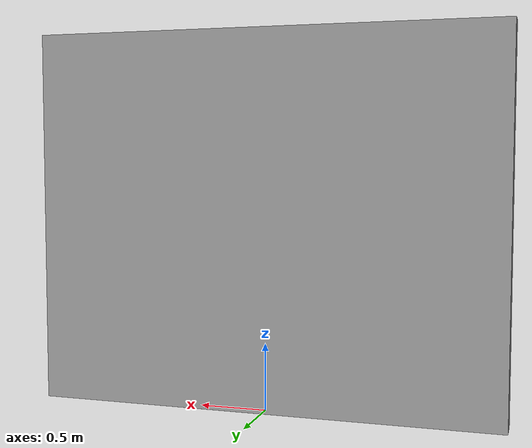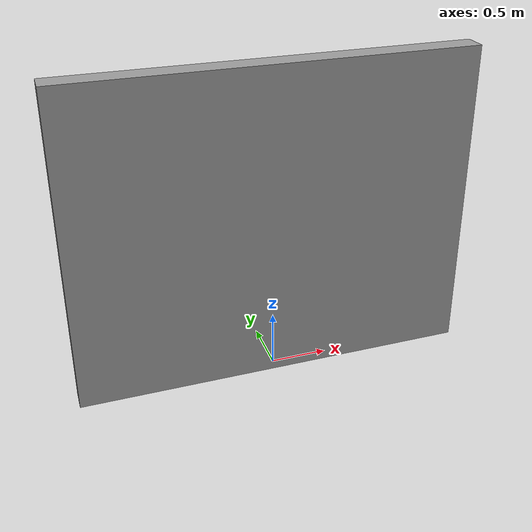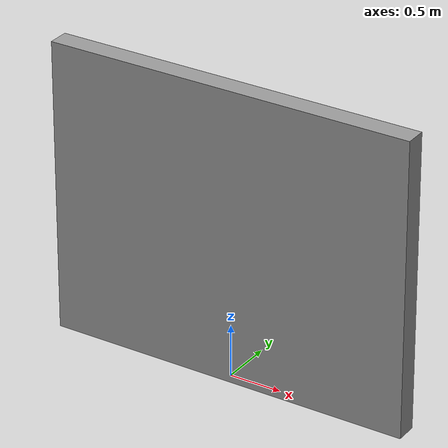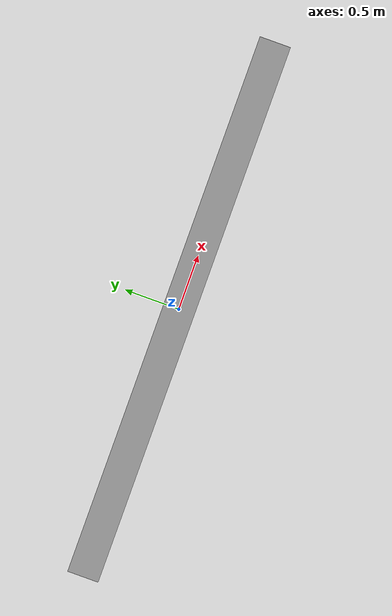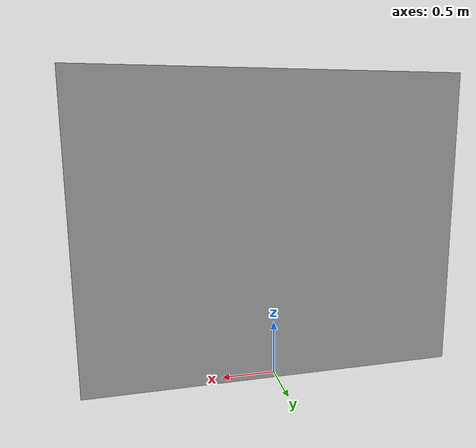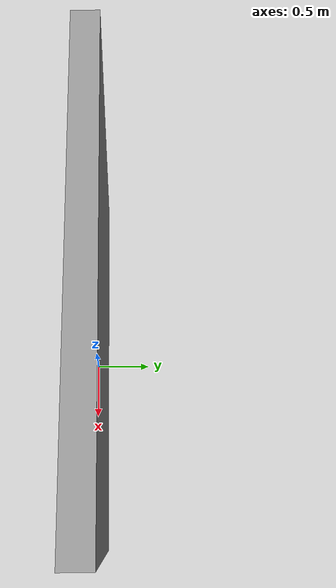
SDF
<?xml version="1.0" ?>
<sdf version="1.5">
  <model name="grey_wall_smaller">
    <static>true</static>
    <link name="link">
      <pose>0 0 1.4 0 0 0</pose>
      <collision name="collision">
        <geometry>
          <box>
            <size>3.5 0.2 2.8</size>
          </box>
        </geometry>
      </collision>
      <visual name="visual">
        <cast_shadows>false</cast_shadows>
        <geometry>
          <box>
            <size>3.5 0.2 2.8</size>
          </box>
        </geometry>
        <material>
          <script>
            <uri>model://grey_wall_smaller/materials/scripts</uri>
            <uri>model://grey_wall_smaller/materials/textures</uri>
            <name>vrc/grey_wall_smaller</name>
          </script>
        </material>
      </visual>
    </link>
  </model>
</sdf>
